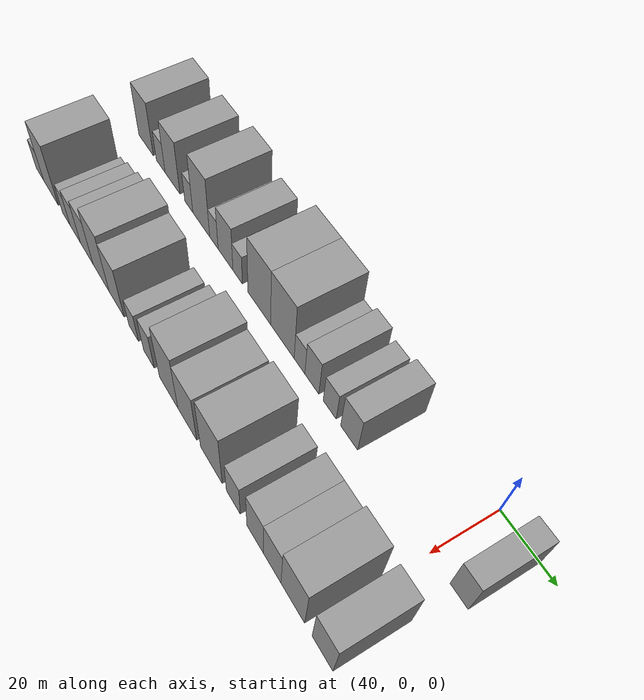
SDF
<sdf version="1.6">
 <world name="default">
  <model name="building_17">
   <static>1</static>
   <pose>50.0000 -143.2969 0 0.000000 0.000000 0.000000</pose>
   <link name="link">
    <pose>0 0 10.50 0 0 0</pose>
    <collision name="collision"><geometry><box><size>20.0000 9.8226 21.0000</size></box></geometry></collision>
    <visual name="visual">
     <cast_shadows>0</cast_shadows>
     <geometry><box><size>20.0000 9.8226 21.0000</size></box></geometry>
     <material>
      <script>
       <uri>model://grey_wall/materials/scripts</uri>
       <uri>model://grey_wall/materials/textures</uri>
       <name>vrc/grey_wall</name>
      </script>
     </material>
    </visual>
   </link>
  </model>
  <model name="building_18">
   <static>1</static>
   <pose>50.0000 -133.5060 0 0.000000 0.000000 0.000000</pose>
   <link name="link">
    <pose>0 0 6.00 0 0 0</pose>
    <collision name="collision"><geometry><box><size>20.0000 5.7592 12.0000</size></box></geometry></collision>
    <visual name="visual">
     <cast_shadows>0</cast_shadows>
     <geometry><box><size>20.0000 5.7592 12.0000</size></box></geometry>
     <material>
      <script>
       <uri>model://grey_wall/materials/scripts</uri>
       <uri>model://grey_wall/materials/textures</uri>
       <name>vrc/grey_wall</name>
      </script>
     </material>
    </visual>
   </link>
  </model>
  <model name="building_19">
   <static>1</static>
   <pose>50.0000 -125.8927 0 0.000000 0.000000 0.000000</pose>
   <link name="link">
    <pose>0 0 10.50 0 0 0</pose>
    <collision name="collision"><geometry><box><size>20.0000 9.4675 21.0000</size></box></geometry></collision>
    <visual name="visual">
     <cast_shadows>0</cast_shadows>
     <geometry><box><size>20.0000 9.4675 21.0000</size></box></geometry>
     <material>
      <script>
       <uri>model://grey_wall/materials/scripts</uri>
       <uri>model://grey_wall/materials/textures</uri>
       <name>vrc/grey_wall</name>
      </script>
     </material>
    </visual>
   </link>
  </model>
  <model name="building_20">
   <static>1</static>
   <pose>50.0000 -115.6931 0 0.000000 0.000000 0.000000</pose>
   <link name="link">
    <pose>0 0 6.00 0 0 0</pose>
    <collision name="collision"><geometry><box><size>20.0000 4.9316 12.0000</size></box></geometry></collision>
    <visual name="visual">
     <cast_shadows>0</cast_shadows>
     <geometry><box><size>20.0000 4.9316 12.0000</size></box></geometry>
     <material>
      <script>
       <uri>model://grey_wall/materials/scripts</uri>
       <uri>model://grey_wall/materials/textures</uri>
       <name>vrc/grey_wall</name>
      </script>
     </material>
    </visual>
   </link>
  </model>
  <model name="building_21">
   <static>1</static>
   <pose>50.0000 -108.1800 0 0.000000 0.000000 0.000000</pose>
   <link name="link">
    <pose>0 0 12.00 0 0 0</pose>
    <collision name="collision"><geometry><box><size>20.0000 10.0948 24.0000</size></box></geometry></collision>
    <visual name="visual">
     <cast_shadows>0</cast_shadows>
     <geometry><box><size>20.0000 10.0948 24.0000</size></box></geometry>
     <material>
      <script>
       <uri>model://grey_wall/materials/scripts</uri>
       <uri>model://grey_wall/materials/textures</uri>
       <name>vrc/grey_wall</name>
      </script>
     </material>
    </visual>
   </link>
  </model>
  <model name="building_22">
   <static>1</static>
   <pose>50.0000 -100.7014 0 0.000000 0.000000 0.000000</pose>
   <link name="link">
    <pose>0 0 6.00 0 0 0</pose>
    <collision name="collision"><geometry><box><size>20.0000 4.8624 12.0000</size></box></geometry></collision>
    <visual name="visual">
     <cast_shadows>0</cast_shadows>
     <geometry><box><size>20.0000 4.8624 12.0000</size></box></geometry>
     <material>
      <script>
       <uri>model://grey_wall/materials/scripts</uri>
       <uri>model://grey_wall/materials/textures</uri>
       <name>vrc/grey_wall</name>
      </script>
     </material>
    </visual>
   </link>
  </model>
  <model name="building_23">
   <static>1</static>
   <pose>50.0000 -94.0933 0 0.000000 0.000000 0.000000</pose>
   <link name="link">
    <pose>0 0 9.00 0 0 0</pose>
    <collision name="collision"><geometry><box><size>20.0000 8.3538 18.0000</size></box></geometry></collision>
    <visual name="visual">
     <cast_shadows>0</cast_shadows>
     <geometry><box><size>20.0000 8.3538 18.0000</size></box></geometry>
     <material>
      <script>
       <uri>model://grey_wall/materials/scripts</uri>
       <uri>model://grey_wall/materials/textures</uri>
       <name>vrc/grey_wall</name>
      </script>
     </material>
    </visual>
   </link>
  </model>
  <model name="building_24">
   <static>1</static>
   <pose>50.0000 -87.2946 0 0.000000 0.000000 0.000000</pose>
   <link name="link">
    <pose>0 0 6.00 0 0 0</pose>
    <collision name="collision"><geometry><box><size>20.0000 5.2435 12.0000</size></box></geometry></collision>
    <visual name="visual">
     <cast_shadows>0</cast_shadows>
     <geometry><box><size>20.0000 5.2435 12.0000</size></box></geometry>
     <material>
      <script>
       <uri>model://grey_wall/materials/scripts</uri>
       <uri>model://grey_wall/materials/textures</uri>
       <name>vrc/grey_wall</name>
      </script>
     </material>
    </visual>
   </link>
  </model>
  <model name="building_25">
   <static>1</static>
   <pose>50.0000 -75.7288 0 0.000000 0.000000 0.000000</pose>
   <link name="link">
    <pose>0 0 12.00 0 0 0</pose>
    <collision name="collision"><geometry><box><size>20.0000 11.8882 24.0000</size></box></geometry></collision>
    <visual name="visual">
     <cast_shadows>0</cast_shadows>
     <geometry><box><size>20.0000 11.8882 24.0000</size></box></geometry>
     <material>
      <script>
       <uri>model://grey_wall/materials/scripts</uri>
       <uri>model://grey_wall/materials/textures</uri>
       <name>vrc/grey_wall</name>
      </script>
     </material>
    </visual>
   </link>
  </model>
  <model name="building_26">
   <static>1</static>
   <pose>50.0000 -63.8923 0 0.000000 0.000000 0.000000</pose>
   <link name="link">
    <pose>0 0 12.00 0 0 0</pose>
    <collision name="collision"><geometry><box><size>20.0000 11.7849 24.0000</size></box></geometry></collision>
    <visual name="visual">
     <cast_shadows>0</cast_shadows>
     <geometry><box><size>20.0000 11.7849 24.0000</size></box></geometry>
     <material>
      <script>
       <uri>model://grey_wall/materials/scripts</uri>
       <uri>model://grey_wall/materials/textures</uri>
       <name>vrc/grey_wall</name>
      </script>
     </material>
    </visual>
   </link>
  </model>
  <model name="building_27">
   <static>1</static>
   <pose>50.0000 -55.4154 0 0.000000 0.000000 0.000000</pose>
   <link name="link">
    <pose>0 0 6.00 0 0 0</pose>
    <collision name="collision"><geometry><box><size>20.0000 5.1688 12.0000</size></box></geometry></collision>
    <visual name="visual">
     <cast_shadows>0</cast_shadows>
     <geometry><box><size>20.0000 5.1688 12.0000</size></box></geometry>
     <material>
      <script>
       <uri>model://grey_wall/materials/scripts</uri>
       <uri>model://grey_wall/materials/textures</uri>
       <name>vrc/grey_wall</name>
      </script>
     </material>
    </visual>
   </link>
  </model>
  <model name="building_28">
   <static>1</static>
   <pose>50.0000 -49.5430 0 0.000000 0.000000 0.000000</pose>
   <link name="link">
    <pose>0 0 7.50 0 0 0</pose>
    <collision name="collision"><geometry><box><size>20.0000 6.5759 15.0000</size></box></geometry></collision>
    <visual name="visual">
     <cast_shadows>0</cast_shadows>
     <geometry><box><size>20.0000 6.5759 15.0000</size></box></geometry>
     <material>
      <script>
       <uri>model://grey_wall/materials/scripts</uri>
       <uri>model://grey_wall/materials/textures</uri>
       <name>vrc/grey_wall</name>
      </script>
     </material>
    </visual>
   </link>
  </model>
  <model name="building_29">
   <static>1</static>
   <pose>50.0000 -41.3061 0 0.000000 0.000000 0.000000</pose>
   <link name="link">
    <pose>0 0 6.00 0 0 0</pose>
    <collision name="collision"><geometry><box><size>20.0000 5.8980 12.0000</size></box></geometry></collision>
    <visual name="visual">
     <cast_shadows>0</cast_shadows>
     <geometry><box><size>20.0000 5.8980 12.0000</size></box></geometry>
     <material>
      <script>
       <uri>model://grey_wall/materials/scripts</uri>
       <uri>model://grey_wall/materials/textures</uri>
       <name>vrc/grey_wall</name>
      </script>
     </material>
    </visual>
   </link>
  </model>
  <model name="building_30">
   <static>1</static>
   <pose>50.0000 -32.6399 0 0.000000 0.000000 0.000000</pose>
   <link name="link">
    <pose>0 0 7.50 0 0 0</pose>
    <collision name="collision"><geometry><box><size>20.0000 7.4343 15.0000</size></box></geometry></collision>
    <visual name="visual">
     <cast_shadows>0</cast_shadows>
     <geometry><box><size>20.0000 7.4343 15.0000</size></box></geometry>
     <material>
      <script>
       <uri>model://grey_wall/materials/scripts</uri>
       <uri>model://grey_wall/materials/textures</uri>
       <name>vrc/grey_wall</name>
      </script>
     </material>
    </visual>
   </link>
  </model>
  <model name="building_31">
   <static>1</static>
   <pose>50.0000 10.7931 0 0.000000 0.000000 0.000000</pose>
   <link name="link">
    <pose>0 0 7.50 0 0 0</pose>
    <collision name="collision"><geometry><box><size>20.0000 6.4772 15.0000</size></box></geometry></collision>
    <visual name="visual">
     <cast_shadows>0</cast_shadows>
     <geometry><box><size>20.0000 6.4772 15.0000</size></box></geometry>
     <material>
      <script>
       <uri>model://grey_wall/materials/scripts</uri>
       <uri>model://grey_wall/materials/textures</uri>
       <name>vrc/grey_wall</name>
      </script>
     </material>
    </visual>
   </link>
  </model>
  <model name="building_77">
   <static>1</static>
   <pose>82.0000 -148.5441 0 0.000000 0.000000 0.000000</pose>
   <link name="link">
    <pose>0 0 6.00 0 0 0</pose>
    <collision name="collision"><geometry><box><size>20.0000 5.7327 12.0000</size></box></geometry></collision>
    <visual name="visual">
     <cast_shadows>0</cast_shadows>
     <geometry><box><size>20.0000 5.7327 12.0000</size></box></geometry>
     <material>
      <script>
       <uri>model://grey_wall/materials/scripts</uri>
       <uri>model://grey_wall/materials/textures</uri>
       <name>vrc/grey_wall</name>
      </script>
     </material>
    </visual>
   </link>
  </model>
  <model name="building_78">
   <static>1</static>
   <pose>82.0000 -140.3143 0 0.000000 0.000000 0.000000</pose>
   <link name="link">
    <pose>0 0 12.00 0 0 0</pose>
    <collision name="collision"><geometry><box><size>20.0000 10.7269 24.0000</size></box></geometry></collision>
    <visual name="visual">
     <cast_shadows>0</cast_shadows>
     <geometry><box><size>20.0000 10.7269 24.0000</size></box></geometry>
     <material>
      <script>
       <uri>model://grey_wall/materials/scripts</uri>
       <uri>model://grey_wall/materials/textures</uri>
       <name>vrc/grey_wall</name>
      </script>
     </material>
    </visual>
   </link>
  </model>
  <model name="building_79">
   <static>1</static>
   <pose>82.0000 -129.2408 0 0.000000 0.000000 0.000000</pose>
   <link name="link">
    <pose>0 0 6.00 0 0 0</pose>
    <collision name="collision"><geometry><box><size>20.0000 5.4200 12.0000</size></box></geometry></collision>
    <visual name="visual">
     <cast_shadows>0</cast_shadows>
     <geometry><box><size>20.0000 5.4200 12.0000</size></box></geometry>
     <material>
      <script>
       <uri>model://grey_wall/materials/scripts</uri>
       <uri>model://grey_wall/materials/textures</uri>
       <name>vrc/grey_wall</name>
      </script>
     </material>
    </visual>
   </link>
  </model>
  <model name="building_80">
   <static>1</static>
   <pose>82.0000 -122.9179 0 0.000000 0.000000 0.000000</pose>
   <link name="link">
    <pose>0 0 7.50 0 0 0</pose>
    <collision name="collision"><geometry><box><size>20.0000 7.2259 15.0000</size></box></geometry></collision>
    <visual name="visual">
     <cast_shadows>0</cast_shadows>
     <geometry><box><size>20.0000 7.2259 15.0000</size></box></geometry>
     <material>
      <script>
       <uri>model://grey_wall/materials/scripts</uri>
       <uri>model://grey_wall/materials/textures</uri>
       <name>vrc/grey_wall</name>
      </script>
     </material>
    </visual>
   </link>
  </model>
  <model name="building_81">
   <static>1</static>
   <pose>82.0000 -115.0719 0 0.000000 0.000000 0.000000</pose>
   <link name="link">
    <pose>0 0 9.00 0 0 0</pose>
    <collision name="collision"><geometry><box><size>20.0000 8.4660 18.0000</size></box></geometry></collision>
    <visual name="visual">
     <cast_shadows>0</cast_shadows>
     <geometry><box><size>20.0000 8.4660 18.0000</size></box></geometry>
     <material>
      <script>
       <uri>model://grey_wall/materials/scripts</uri>
       <uri>model://grey_wall/materials/textures</uri>
       <name>vrc/grey_wall</name>
      </script>
     </material>
    </visual>
   </link>
  </model>
  <model name="building_82">
   <static>1</static>
   <pose>82.0000 -105.6387 0 0.000000 0.000000 0.000000</pose>
   <link name="link">
    <pose>0 0 12.00 0 0 0</pose>
    <collision name="collision"><geometry><box><size>20.0000 10.4004 24.0000</size></box></geometry></collision>
    <visual name="visual">
     <cast_shadows>0</cast_shadows>
     <geometry><box><size>20.0000 10.4004 24.0000</size></box></geometry>
     <material>
      <script>
       <uri>model://grey_wall/materials/scripts</uri>
       <uri>model://grey_wall/materials/textures</uri>
       <name>vrc/grey_wall</name>
      </script>
     </material>
    </visual>
   </link>
  </model>
  <model name="building_83">
   <static>1</static>
   <pose>82.0000 -95.8038 0 0.000000 0.000000 0.000000</pose>
   <link name="link">
    <pose>0 0 10.50 0 0 0</pose>
    <collision name="collision"><geometry><box><size>20.0000 9.2695 21.0000</size></box></geometry></collision>
    <visual name="visual">
     <cast_shadows>0</cast_shadows>
     <geometry><box><size>20.0000 9.2695 21.0000</size></box></geometry>
     <material>
      <script>
       <uri>model://grey_wall/materials/scripts</uri>
       <uri>model://grey_wall/materials/textures</uri>
       <name>vrc/grey_wall</name>
      </script>
     </material>
    </visual>
   </link>
  </model>
  <model name="building_84">
   <static>1</static>
   <pose>82.0000 -85.3598 0 0.000000 0.000000 0.000000</pose>
   <link name="link">
    <pose>0 0 6.00 0 0 0</pose>
    <collision name="collision"><geometry><box><size>20.0000 5.6184 12.0000</size></box></geometry></collision>
    <visual name="visual">
     <cast_shadows>0</cast_shadows>
     <geometry><box><size>20.0000 5.6184 12.0000</size></box></geometry>
     <material>
      <script>
       <uri>model://grey_wall/materials/scripts</uri>
       <uri>model://grey_wall/materials/textures</uri>
       <name>vrc/grey_wall</name>
      </script>
     </material>
    </visual>
   </link>
  </model>
  <model name="building_85">
   <static>1</static>
   <pose>82.0000 -76.5153 0 0.000000 0.000000 0.000000</pose>
   <link name="link">
    <pose>0 0 7.50 0 0 0</pose>
    <collision name="collision"><geometry><box><size>20.0000 6.0707 15.0000</size></box></geometry></collision>
    <visual name="visual">
     <cast_shadows>0</cast_shadows>
     <geometry><box><size>20.0000 6.0707 15.0000</size></box></geometry>
     <material>
      <script>
       <uri>model://grey_wall/materials/scripts</uri>
       <uri>model://grey_wall/materials/textures</uri>
       <name>vrc/grey_wall</name>
      </script>
     </material>
    </visual>
   </link>
  </model>
  <model name="building_86">
   <static>1</static>
   <pose>82.0000 -65.4254 0 0.000000 0.000000 0.000000</pose>
   <link name="link">
    <pose>0 0 12.00 0 0 0</pose>
    <collision name="collision"><geometry><box><size>20.0000 10.1092 24.0000</size></box></geometry></collision>
    <visual name="visual">
     <cast_shadows>0</cast_shadows>
     <geometry><box><size>20.0000 10.1092 24.0000</size></box></geometry>
     <material>
      <script>
       <uri>model://grey_wall/materials/scripts</uri>
       <uri>model://grey_wall/materials/textures</uri>
       <name>vrc/grey_wall</name>
      </script>
     </material>
    </visual>
   </link>
  </model>
  <model name="building_87">
   <static>1</static>
   <pose>82.0000 -55.4789 0 0.000000 0.000000 0.000000</pose>
   <link name="link">
    <pose>0 0 10.50 0 0 0</pose>
    <collision name="collision"><geometry><box><size>20.0000 9.7836 21.0000</size></box></geometry></collision>
    <visual name="visual">
     <cast_shadows>0</cast_shadows>
     <geometry><box><size>20.0000 9.7836 21.0000</size></box></geometry>
     <material>
      <script>
       <uri>model://grey_wall/materials/scripts</uri>
       <uri>model://grey_wall/materials/textures</uri>
       <name>vrc/grey_wall</name>
      </script>
     </material>
    </visual>
   </link>
  </model>
  <model name="building_88">
   <static>1</static>
   <pose>82.0000 -43.2314 0 0.000000 0.000000 0.000000</pose>
   <link name="link">
    <pose>0 0 12.00 0 0 0</pose>
    <collision name="collision"><geometry><box><size>20.0000 10.7114 24.0000</size></box></geometry></collision>
    <visual name="visual">
     <cast_shadows>0</cast_shadows>
     <geometry><box><size>20.0000 10.7114 24.0000</size></box></geometry>
     <material>
      <script>
       <uri>model://grey_wall/materials/scripts</uri>
       <uri>model://grey_wall/materials/textures</uri>
       <name>vrc/grey_wall</name>
      </script>
     </material>
    </visual>
   </link>
  </model>
  <model name="building_89">
   <static>1</static>
   <pose>82.0000 -32.5953 0 0.000000 0.000000 0.000000</pose>
   <link name="link">
    <pose>0 0 7.50 0 0 0</pose>
    <collision name="collision"><geometry><box><size>20.0000 6.5607 15.0000</size></box></geometry></collision>
    <visual name="visual">
     <cast_shadows>0</cast_shadows>
     <geometry><box><size>20.0000 6.5607 15.0000</size></box></geometry>
     <material>
      <script>
       <uri>model://grey_wall/materials/scripts</uri>
       <uri>model://grey_wall/materials/textures</uri>
       <name>vrc/grey_wall</name>
      </script>
     </material>
    </visual>
   </link>
  </model>
  <model name="building_90">
   <static>1</static>
   <pose>82.0000 -22.6206 0 0.000000 0.000000 0.000000</pose>
   <link name="link">
    <pose>0 0 9.00 0 0 0</pose>
    <collision name="collision"><geometry><box><size>20.0000 7.3888 18.0000</size></box></geometry></collision>
    <visual name="visual">
     <cast_shadows>0</cast_shadows>
     <geometry><box><size>20.0000 7.3888 18.0000</size></box></geometry>
     <material>
      <script>
       <uri>model://grey_wall/materials/scripts</uri>
       <uri>model://grey_wall/materials/textures</uri>
       <name>vrc/grey_wall</name>
      </script>
     </material>
    </visual>
   </link>
  </model>
  <model name="building_91">
   <static>1</static>
   <pose>82.0000 -15.0597 0 0.000000 0.000000 0.000000</pose>
   <link name="link">
    <pose>0 0 9.00 0 0 0</pose>
    <collision name="collision"><geometry><box><size>20.0000 7.7330 18.0000</size></box></geometry></collision>
    <visual name="visual">
     <cast_shadows>0</cast_shadows>
     <geometry><box><size>20.0000 7.7330 18.0000</size></box></geometry>
     <material>
      <script>
       <uri>model://grey_wall/materials/scripts</uri>
       <uri>model://grey_wall/materials/textures</uri>
       <name>vrc/grey_wall</name>
      </script>
     </material>
    </visual>
   </link>
  </model>
  <model name="building_92">
   <static>1</static>
   <pose>82.0000 -6.2844 0 0.000000 0.000000 0.000000</pose>
   <link name="link">
    <pose>0 0 10.50 0 0 0</pose>
    <collision name="collision"><geometry><box><size>20.0000 9.8177 21.0000</size></box></geometry></collision>
    <visual name="visual">
     <cast_shadows>0</cast_shadows>
     <geometry><box><size>20.0000 9.8177 21.0000</size></box></geometry>
     <material>
      <script>
       <uri>model://grey_wall/materials/scripts</uri>
       <uri>model://grey_wall/materials/textures</uri>
       <name>vrc/grey_wall</name>
      </script>
     </material>
    </visual>
   </link>
  </model>
  <model name="building_93">
   <static>1</static>
   <pose>82.0000 5.7173 0 0.000000 0.000000 0.000000</pose>
   <link name="link">
    <pose>0 0 9.00 0 0 0</pose>
    <collision name="collision"><geometry><box><size>20.0000 8.1857 18.0000</size></box></geometry></collision>
    <visual name="visual">
     <cast_shadows>0</cast_shadows>
     <geometry><box><size>20.0000 8.1857 18.0000</size></box></geometry>
     <material>
      <script>
       <uri>model://grey_wall/materials/scripts</uri>
       <uri>model://grey_wall/materials/textures</uri>
       <name>vrc/grey_wall</name>
      </script>
     </material>
    </visual>
   </link>
  </model>
 </world>
</sdf>
